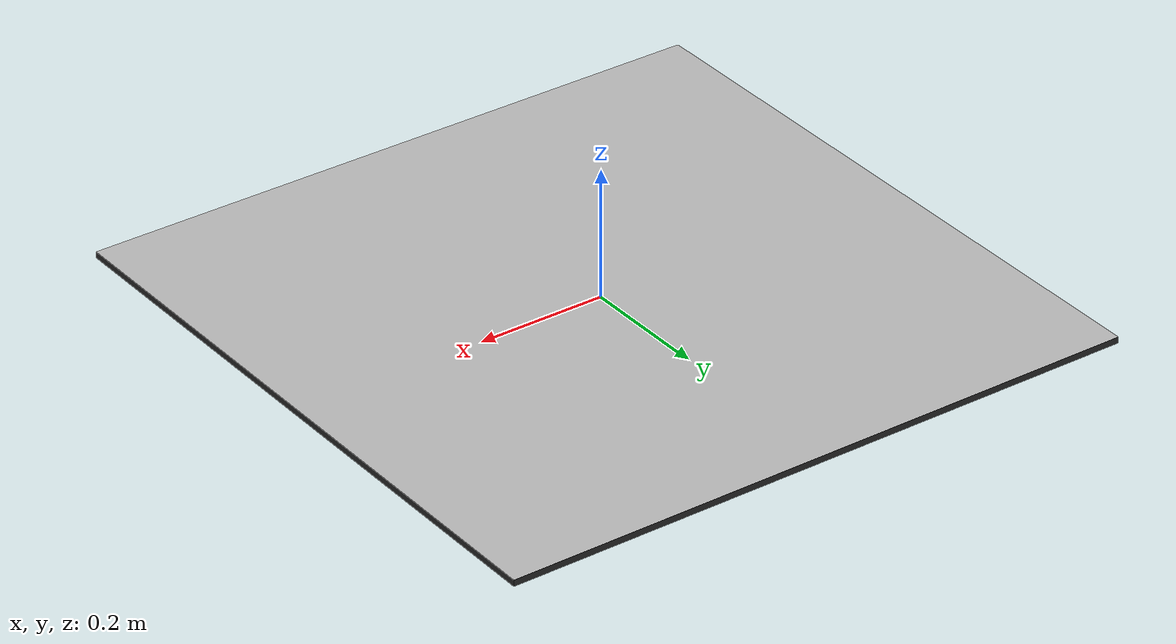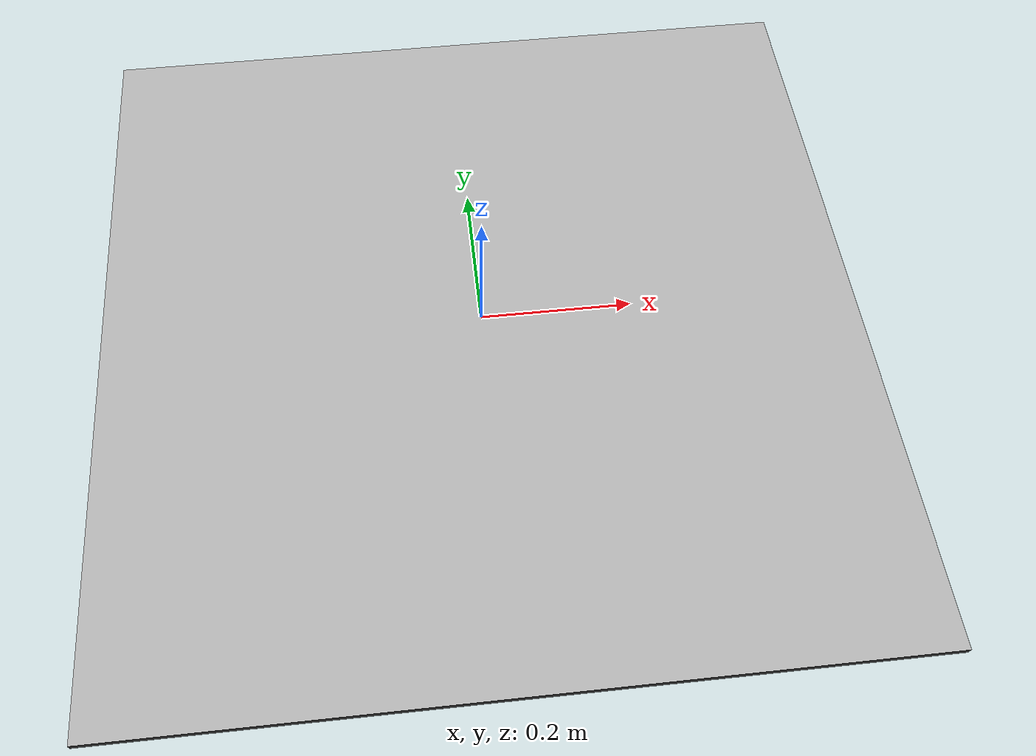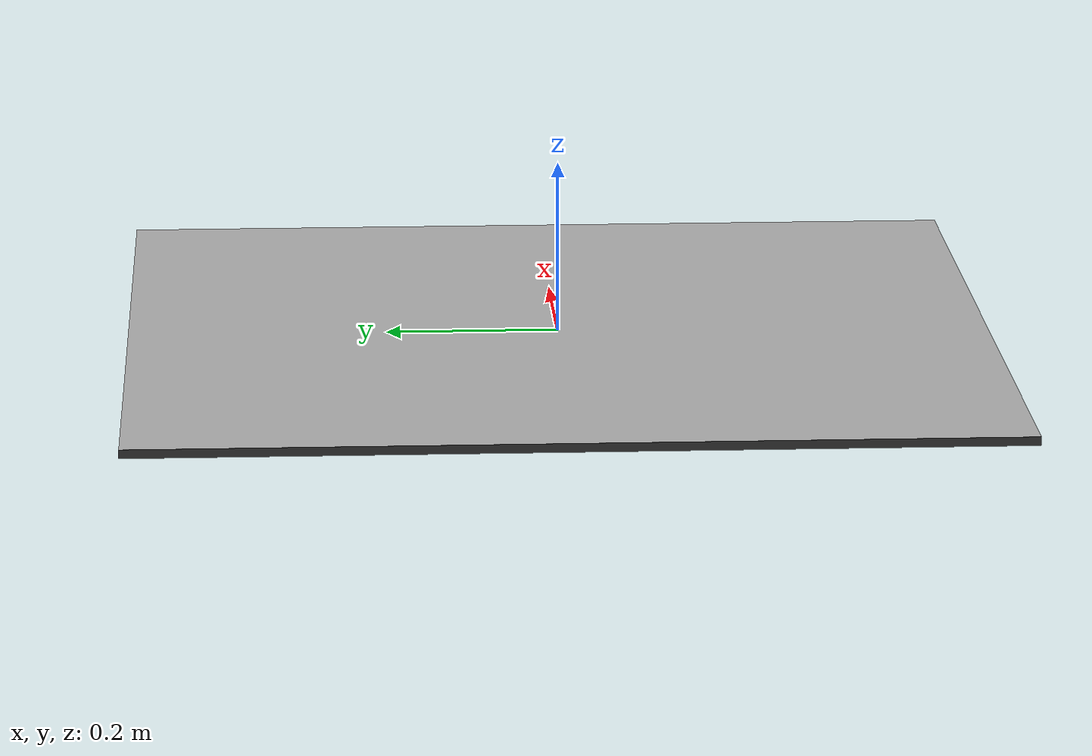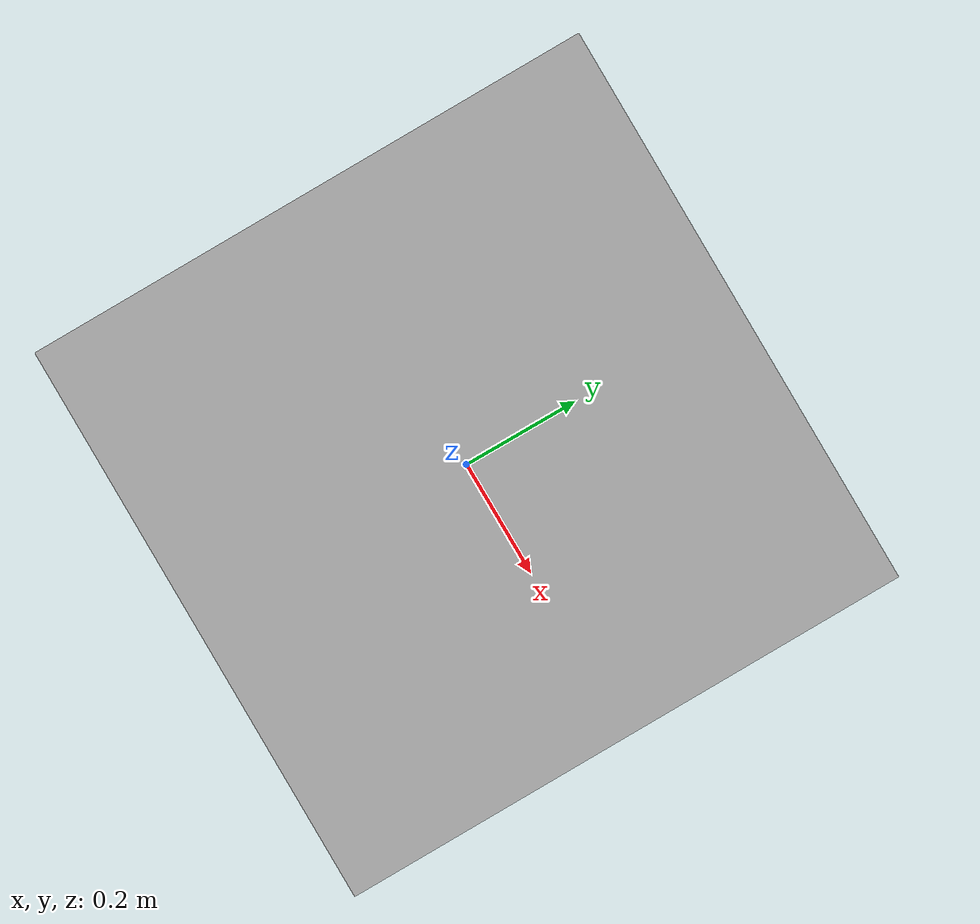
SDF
<?xml version='1.0' encoding='utf-8'?>
<sdf version='1.10'>
<model name='base_takeoff'>
  <pose>0 0 0 0 0 0</pose>
  <link name='box_link'>
    <collision name='box_collision'>
      <geometry>
        <box>
          <size>1 1 0.01</size>
        </box>
      </geometry>
      <surface>
        <friction>
          <ode/>
        </friction>
        <bounce/>
        <contact/>
      </surface>
    </collision>
    <visual name='visual'>
      <geometry>
        <box>
          <size>1 1 0.0099</size>
        </box>
      </geometry>
      <material>
        <ambient>0.175 0.175 0.175 1.0</ambient> <!-- dark grey -->
        <diffuse>0.175 0.175 0.175 1.0</diffuse>
        <specular>1 1 1 1</specular>
      </material>
    </visual>
    <visual name='image'>
      <pose>0 0 0.005 0 0 0</pose>
        <geometry>
          <box>
            <size>1 1 0.0001</size>
          </box>
        </geometry>
        <material>
        <diffuse>0.7 0.7 0.7 1</diffuse>
        <specular>1 1 1 1</specular>
        <pbr>
            <metal>
              <albedo_map>materials/textures/base_suspensa.png</albedo_map>   <!--Takeoff base image-->
              <metalness> 0 </metalness>
              <roughness>1</roughness>
            </metal>
		      </pbr>
      </material>
      </visual>
    <pose>0 0 0 0 0 0</pose>
    <enable_wind>false</enable_wind>
  </link>
  <static>true</static>
  <self_collide>false</self_collide>
</model>
</sdf>
